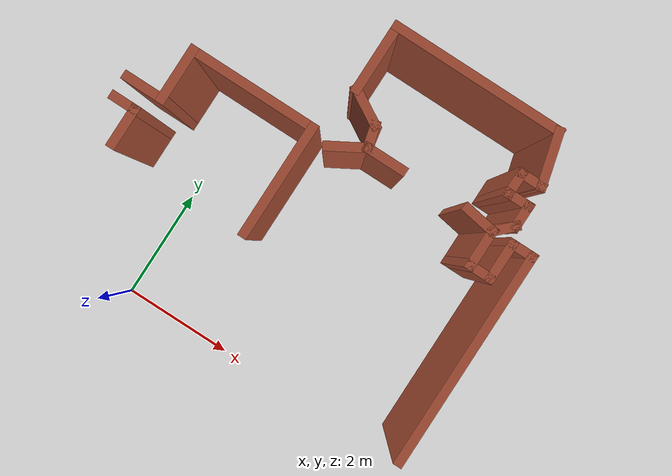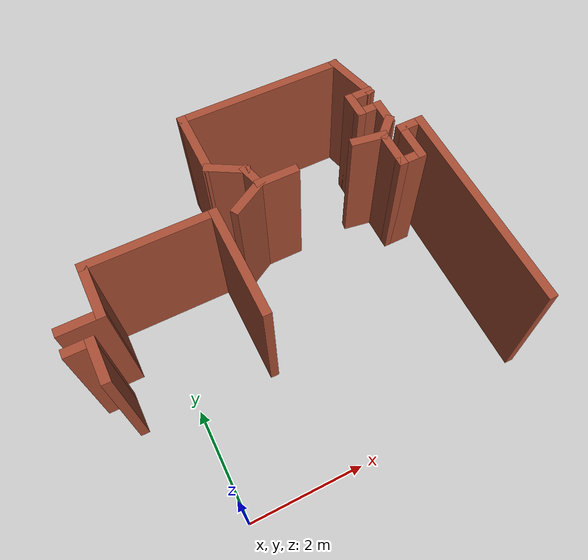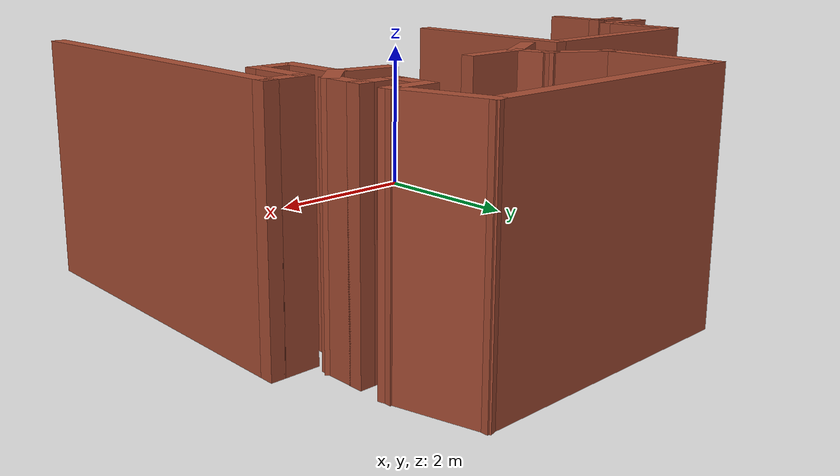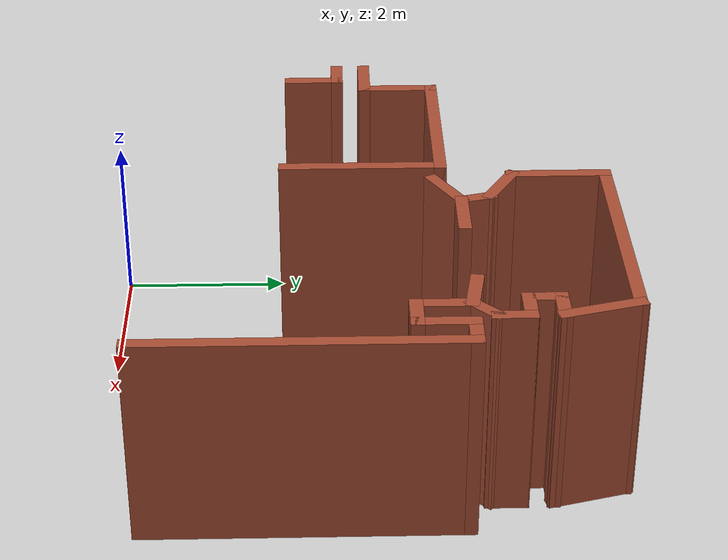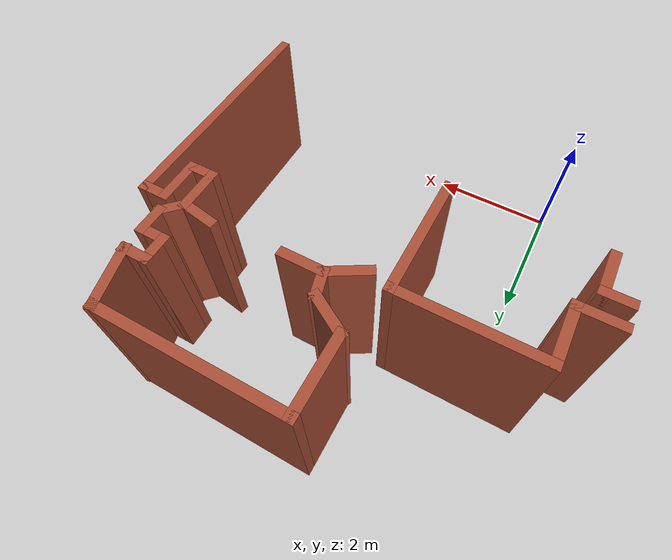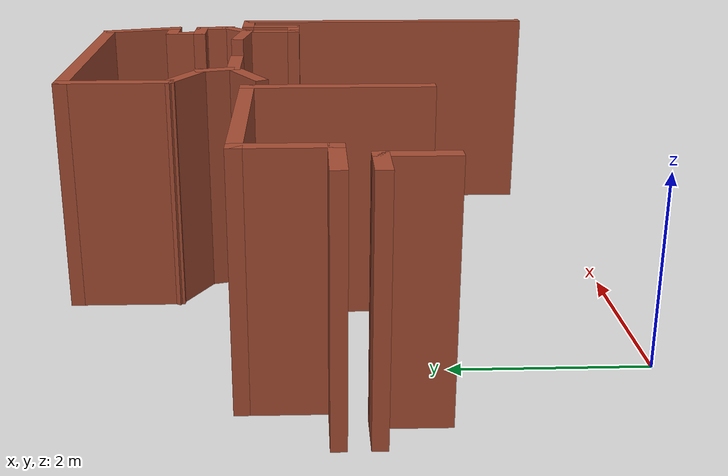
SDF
<sdf version="1.6">
 <model name="map_77">
  <link name="Wall_100">
   <pose>-0.702644 3.51805 0 0 0 -1.5708</pose>
   <visual name="Wall_100_Visual">
    <pose>0 0 1.25 0 -0 0</pose>
    <geometry><box><size>1 0.15 2.5</size></box></geometry>
    <material>
     <script><uri>file://media/materials/scripts/gazebo.material</uri><name>Gazebo/Bricks</name></script>
     <ambient>1 1 1 1</ambient>
     <shader type="pixel"/>
    </material>
    <meta><layer>0</layer></meta>
   </visual>
   <collision name="Wall_100_Collision">
    <pose>0 0 1.25 0 -0 0</pose>
    <geometry><box><size>1 0.15 2.5</size></box></geometry>
    <surface>
     <friction>
      <ode><mu>1</mu><mu2>1</mu2><fdir1>0 0 0</fdir1><slip1>0</slip1><slip2>0</slip2></ode>
      <torsional>
       <coefficient>1</coefficient>
       <patch_radius>0</patch_radius>
       <surface_radius>0</surface_radius>
       <use_patch_radius>1</use_patch_radius>
       <ode><slip>0</slip></ode>
      </torsional>
     </friction>
     <bounce><restitution_coefficient>0</restitution_coefficient><threshold>1e+06</threshold></bounce>
     <contact>
      <collide_without_contact>0</collide_without_contact>
      <collide_without_contact_bitmask>1</collide_without_contact_bitmask>
      <collide_bitmask>1</collide_bitmask>
      <ode>
       <soft_cfm>0</soft_cfm>
       <soft_erp>0.2</soft_erp>
       <kp>1e+13</kp>
       <kd>1</kd>
       <max_vel>0.01</max_vel>
       <min_depth>0</min_depth>
      </ode>
      <bullet>
       <split_impulse>1</split_impulse>
       <split_impulse_penetration_threshold>-0.01</split_impulse_penetration_threshold>
       <soft_cfm>0</soft_cfm>
       <soft_erp>0.2</soft_erp>
       <kp>1e+13</kp>
       <kd>1</kd>
      </bullet>
     </contact>
    </surface>
   </collision>
  </link>
  <link name="Wall_101">
   <pose>-1.00264 3.09305 0 0 -0 3.14159</pose>
   <visual name="Wall_101_Visual">
    <pose>0 0 1.25 0 -0 0</pose>
    <geometry><box><size>0.75 0.15 2.5</size></box></geometry>
    <material>
     <script><uri>file://media/materials/scripts/gazebo.material</uri><name>Gazebo/Bricks</name></script>
     <ambient>1 1 1 1</ambient>
     <shader type="pixel"/>
    </material>
    <meta><layer>0</layer></meta>
   </visual>
   <collision name="Wall_101_Collision">
    <pose>0 0 1.25 0 -0 0</pose>
    <geometry><box><size>0.75 0.15 2.5</size></box></geometry>
    <surface>
     <friction>
      <ode><mu>1</mu><mu2>1</mu2><fdir1>0 0 0</fdir1><slip1>0</slip1><slip2>0</slip2></ode>
      <torsional>
       <coefficient>1</coefficient>
       <patch_radius>0</patch_radius>
       <surface_radius>0</surface_radius>
       <use_patch_radius>1</use_patch_radius>
       <ode><slip>0</slip></ode>
      </torsional>
     </friction>
     <bounce><restitution_coefficient>0</restitution_coefficient><threshold>1e+06</threshold></bounce>
     <contact>
      <collide_without_contact>0</collide_without_contact>
      <collide_without_contact_bitmask>1</collide_without_contact_bitmask>
      <collide_bitmask>1</collide_bitmask>
      <ode>
       <soft_cfm>0</soft_cfm>
       <soft_erp>0.2</soft_erp>
       <kp>1e+13</kp>
       <kd>1</kd>
       <max_vel>0.01</max_vel>
       <min_depth>0</min_depth>
      </ode>
      <bullet>
       <split_impulse>1</split_impulse>
       <split_impulse_penetration_threshold>-0.01</split_impulse_penetration_threshold>
       <soft_cfm>0</soft_cfm>
       <soft_erp>0.2</soft_erp>
       <kp>1e+13</kp>
       <kd>1</kd>
      </bullet>
     </contact>
    </surface>
   </collision>
  </link>
  <link name="Wall_103">
   <pose>-1.12764 2.74305 0 0 -0 0</pose>
   <visual name="Wall_103_Visual">
    <pose>0 0 1.25 0 -0 0</pose>
    <geometry><box><size>0.5 0.15 2.5</size></box></geometry>
    <material>
     <script><uri>file://media/materials/scripts/gazebo.material</uri><name>Gazebo/Bricks</name></script>
     <ambient>1 1 1 1</ambient>
     <shader type="pixel"/>
    </material>
    <meta><layer>0</layer></meta>
   </visual>
   <collision name="Wall_103_Collision">
    <pose>0 0 1.25 0 -0 0</pose>
    <geometry><box><size>0.5 0.15 2.5</size></box></geometry>
    <surface>
     <friction>
      <ode><mu>1</mu><mu2>1</mu2><fdir1>0 0 0</fdir1><slip1>0</slip1><slip2>0</slip2></ode>
      <torsional>
       <coefficient>1</coefficient>
       <patch_radius>0</patch_radius>
       <surface_radius>0</surface_radius>
       <use_patch_radius>1</use_patch_radius>
       <ode><slip>0</slip></ode>
      </torsional>
     </friction>
     <bounce><restitution_coefficient>0</restitution_coefficient><threshold>1e+06</threshold></bounce>
     <contact>
      <collide_without_contact>0</collide_without_contact>
      <collide_without_contact_bitmask>1</collide_without_contact_bitmask>
      <collide_bitmask>1</collide_bitmask>
      <ode>
       <soft_cfm>0</soft_cfm>
       <soft_erp>0.2</soft_erp>
       <kp>1e+13</kp>
       <kd>1</kd>
       <max_vel>0.01</max_vel>
       <min_depth>0</min_depth>
      </ode>
      <bullet>
       <split_impulse>1</split_impulse>
       <split_impulse_penetration_threshold>-0.01</split_impulse_penetration_threshold>
       <soft_cfm>0</soft_cfm>
       <soft_erp>0.2</soft_erp>
       <kp>1e+13</kp>
       <kd>1</kd>
      </bullet>
     </contact>
    </surface>
   </collision>
  </link>
  <link name="Wall_104">
   <pose>-0.952644 2.44305 0 0 0 -1.5708</pose>
   <visual name="Wall_104_Visual">
    <pose>0 0 1.25 0 -0 0</pose>
    <geometry><box><size>0.75 0.15 2.5</size></box></geometry>
    <material>
     <script><uri>file://media/materials/scripts/gazebo.material</uri><name>Gazebo/Bricks</name></script>
     <ambient>1 1 1 1</ambient>
     <shader type="pixel"/>
    </material>
    <meta><layer>0</layer></meta>
   </visual>
   <collision name="Wall_104_Collision">
    <pose>0 0 1.25 0 -0 0</pose>
    <geometry><box><size>0.75 0.15 2.5</size></box></geometry>
    <surface>
     <friction>
      <ode><mu>1</mu><mu2>1</mu2><fdir1>0 0 0</fdir1><slip1>0</slip1><slip2>0</slip2></ode>
      <torsional>
       <coefficient>1</coefficient>
       <patch_radius>0</patch_radius>
       <surface_radius>0</surface_radius>
       <use_patch_radius>1</use_patch_radius>
       <ode><slip>0</slip></ode>
      </torsional>
     </friction>
     <bounce><restitution_coefficient>0</restitution_coefficient><threshold>1e+06</threshold></bounce>
     <contact>
      <collide_without_contact>0</collide_without_contact>
      <collide_without_contact_bitmask>1</collide_without_contact_bitmask>
      <collide_bitmask>1</collide_bitmask>
      <ode>
       <soft_cfm>0</soft_cfm>
       <soft_erp>0.2</soft_erp>
       <kp>1e+13</kp>
       <kd>1</kd>
       <max_vel>0.01</max_vel>
       <min_depth>0</min_depth>
      </ode>
      <bullet>
       <split_impulse>1</split_impulse>
       <split_impulse_penetration_threshold>-0.01</split_impulse_penetration_threshold>
       <soft_cfm>0</soft_cfm>
       <soft_erp>0.2</soft_erp>
       <kp>1e+13</kp>
       <kd>1</kd>
      </bullet>
     </contact>
    </surface>
   </collision>
  </link>
  <link name="Wall_126">
   <pose>2.54653 4.13776 0 0 -0 0</pose>
   <visual name="Wall_126_Visual">
    <pose>0 0 1.25 0 -0 0</pose>
    <geometry><box><size>0.75 0.15 2.5</size></box></geometry>
    <material>
     <script><uri>file://media/materials/scripts/gazebo.material</uri><name>Gazebo/Bricks</name></script>
     <ambient>1 1 1 1</ambient>
     <shader type="pixel"/>
    </material>
    <meta><layer>0</layer></meta>
   </visual>
   <collision name="Wall_126_Collision">
    <pose>0 0 1.25 0 -0 0</pose>
    <geometry><box><size>0.75 0.15 2.5</size></box></geometry>
    <surface>
     <friction>
      <ode><mu>1</mu><mu2>1</mu2><fdir1>0 0 0</fdir1><slip1>0</slip1><slip2>0</slip2></ode>
      <torsional>
       <coefficient>1</coefficient>
       <patch_radius>0</patch_radius>
       <surface_radius>0</surface_radius>
       <use_patch_radius>1</use_patch_radius>
       <ode><slip>0</slip></ode>
      </torsional>
     </friction>
     <bounce><restitution_coefficient>0</restitution_coefficient><threshold>1e+06</threshold></bounce>
     <contact>
      <collide_without_contact>0</collide_without_contact>
      <collide_without_contact_bitmask>1</collide_without_contact_bitmask>
      <collide_bitmask>1</collide_bitmask>
      <ode>
       <soft_cfm>0</soft_cfm>
       <soft_erp>0.2</soft_erp>
       <kp>1e+13</kp>
       <kd>1</kd>
       <max_vel>0.01</max_vel>
       <min_depth>0</min_depth>
      </ode>
      <bullet>
       <split_impulse>1</split_impulse>
       <split_impulse_penetration_threshold>-0.01</split_impulse_penetration_threshold>
       <soft_cfm>0</soft_cfm>
       <soft_erp>0.2</soft_erp>
       <kp>1e+13</kp>
       <kd>1</kd>
      </bullet>
     </contact>
    </surface>
   </collision>
  </link>
  <link name="Wall_128">
   <pose>4.21616 4.14715 0 0 0 -0.162711</pose>
   <visual name="Wall_128_Visual">
    <pose>0 0 1.25 0 -0 0</pose>
    <geometry><box><size>0.641843 0.15 2.5</size></box></geometry>
    <material>
     <script><uri>file://media/materials/scripts/gazebo.material</uri><name>Gazebo/Bricks</name></script>
     <ambient>1 1 1 1</ambient>
     <shader type="pixel"/>
    </material>
    <meta><layer>0</layer></meta>
   </visual>
   <collision name="Wall_128_Collision">
    <pose>0 0 1.25 0 -0 0</pose>
    <geometry><box><size>0.641843 0.15 2.5</size></box></geometry>
    <surface>
     <friction>
      <ode><mu>1</mu><mu2>1</mu2><fdir1>0 0 0</fdir1><slip1>0</slip1><slip2>0</slip2></ode>
      <torsional>
       <coefficient>1</coefficient>
       <patch_radius>0</patch_radius>
       <surface_radius>0</surface_radius>
       <use_patch_radius>1</use_patch_radius>
       <ode><slip>0</slip></ode>
      </torsional>
     </friction>
     <bounce><restitution_coefficient>0</restitution_coefficient><threshold>1e+06</threshold></bounce>
     <contact>
      <collide_without_contact>0</collide_without_contact>
      <collide_without_contact_bitmask>1</collide_without_contact_bitmask>
      <collide_bitmask>1</collide_bitmask>
      <ode>
       <soft_cfm>0</soft_cfm>
       <soft_erp>0.2</soft_erp>
       <kp>1e+13</kp>
       <kd>1</kd>
       <max_vel>0.01</max_vel>
       <min_depth>0</min_depth>
      </ode>
      <bullet>
       <split_impulse>1</split_impulse>
       <split_impulse_penetration_threshold>-0.01</split_impulse_penetration_threshold>
       <soft_cfm>0</soft_cfm>
       <soft_erp>0.2</soft_erp>
       <kp>1e+13</kp>
       <kd>1</kd>
      </bullet>
     </contact>
    </surface>
   </collision>
  </link>
  <link name="Wall_74">
   <pose>5.15883 2.30731 0 0 -0 1.5708</pose>
   <visual name="Wall_74_Visual">
    <pose>0 0 1.25 0 -0 0</pose>
    <geometry><box><size>3.75 0.15 2.5</size></box></geometry>
    <material>
     <script><uri>file://media/materials/scripts/gazebo.material</uri><name>Gazebo/Bricks</name></script>
     <ambient>1 1 1 1</ambient>
     <shader type="pixel"/>
    </material>
    <meta><layer>0</layer></meta>
   </visual>
   <collision name="Wall_74_Collision">
    <pose>0 0 1.25 0 -0 0</pose>
    <geometry><box><size>3.75 0.15 2.5</size></box></geometry>
    <surface>
     <friction>
      <ode><mu>1</mu><mu2>1</mu2><fdir1>0 0 0</fdir1><slip1>0</slip1><slip2>0</slip2></ode>
      <torsional>
       <coefficient>1</coefficient>
       <patch_radius>0</patch_radius>
       <surface_radius>0</surface_radius>
       <use_patch_radius>1</use_patch_radius>
       <ode><slip>0</slip></ode>
      </torsional>
     </friction>
     <bounce><restitution_coefficient>0</restitution_coefficient><threshold>1e+06</threshold></bounce>
     <contact>
      <collide_without_contact>0</collide_without_contact>
      <collide_without_contact_bitmask>1</collide_without_contact_bitmask>
      <collide_bitmask>1</collide_bitmask>
      <ode>
       <soft_cfm>0</soft_cfm>
       <soft_erp>0.2</soft_erp>
       <kp>1e+13</kp>
       <kd>1</kd>
       <max_vel>0.01</max_vel>
       <min_depth>0</min_depth>
      </ode>
      <bullet>
       <split_impulse>1</split_impulse>
       <split_impulse_penetration_threshold>-0.01</split_impulse_penetration_threshold>
       <soft_cfm>0</soft_cfm>
       <soft_erp>0.2</soft_erp>
       <kp>1e+13</kp>
       <kd>1</kd>
      </bullet>
     </contact>
    </surface>
   </collision>
  </link>
  <link name="Wall_75">
   <pose>4.98383 4.10731 0 0 -0 3.14159</pose>
   <visual name="Wall_75_Visual">
    <pose>0 0 1.25 0 -0 0</pose>
    <geometry><box><size>0.5 0.15 2.5</size></box></geometry>
    <material>
     <script><uri>file://media/materials/scripts/gazebo.material</uri><name>Gazebo/Bricks</name></script>
     <ambient>1 1 1 1</ambient>
     <shader type="pixel"/>
    </material>
    <meta><layer>0</layer></meta>
   </visual>
   <collision name="Wall_75_Collision">
    <pose>0 0 1.25 0 -0 0</pose>
    <geometry><box><size>0.5 0.15 2.5</size></box></geometry>
    <surface>
     <friction>
      <ode><mu>1</mu><mu2>1</mu2><fdir1>0 0 0</fdir1><slip1>0</slip1><slip2>0</slip2></ode>
      <torsional>
       <coefficient>1</coefficient>
       <patch_radius>0</patch_radius>
       <surface_radius>0</surface_radius>
       <use_patch_radius>1</use_patch_radius>
       <ode><slip>0</slip></ode>
      </torsional>
     </friction>
     <bounce><restitution_coefficient>0</restitution_coefficient><threshold>1e+06</threshold></bounce>
     <contact>
      <collide_without_contact>0</collide_without_contact>
      <collide_without_contact_bitmask>1</collide_without_contact_bitmask>
      <collide_bitmask>1</collide_bitmask>
      <ode>
       <soft_cfm>0</soft_cfm>
       <soft_erp>0.2</soft_erp>
       <kp>1e+13</kp>
       <kd>1</kd>
       <max_vel>0.01</max_vel>
       <min_depth>0</min_depth>
      </ode>
      <bullet>
       <split_impulse>1</split_impulse>
       <split_impulse_penetration_threshold>-0.01</split_impulse_penetration_threshold>
       <soft_cfm>0</soft_cfm>
       <soft_erp>0.2</soft_erp>
       <kp>1e+13</kp>
       <kd>1</kd>
      </bullet>
     </contact>
    </surface>
   </collision>
  </link>
  <link name="Wall_76">
   <pose>4.80883 3.80731 0 0 0 -1.5708</pose>
   <visual name="Wall_76_Visual">
    <pose>0 0 1.25 0 -0 0</pose>
    <geometry><box><size>0.75 0.15 2.5</size></box></geometry>
    <material>
     <script><uri>file://media/materials/scripts/gazebo.material</uri><name>Gazebo/Bricks</name></script>
     <ambient>1 1 1 1</ambient>
     <shader type="pixel"/>
    </material>
    <meta><layer>0</layer></meta>
   </visual>
   <collision name="Wall_76_Collision">
    <pose>0 0 1.25 0 -0 0</pose>
    <geometry><box><size>0.75 0.15 2.5</size></box></geometry>
    <surface>
     <friction>
      <ode><mu>1</mu><mu2>1</mu2><fdir1>0 0 0</fdir1><slip1>0</slip1><slip2>0</slip2></ode>
      <torsional>
       <coefficient>1</coefficient>
       <patch_radius>0</patch_radius>
       <surface_radius>0</surface_radius>
       <use_patch_radius>1</use_patch_radius>
       <ode><slip>0</slip></ode>
      </torsional>
     </friction>
     <bounce><restitution_coefficient>0</restitution_coefficient><threshold>1e+06</threshold></bounce>
     <contact>
      <collide_without_contact>0</collide_without_contact>
      <collide_without_contact_bitmask>1</collide_without_contact_bitmask>
      <collide_bitmask>1</collide_bitmask>
      <ode>
       <soft_cfm>0</soft_cfm>
       <soft_erp>0.2</soft_erp>
       <kp>1e+13</kp>
       <kd>1</kd>
       <max_vel>0.01</max_vel>
       <min_depth>0</min_depth>
      </ode>
      <bullet>
       <split_impulse>1</split_impulse>
       <split_impulse_penetration_threshold>-0.01</split_impulse_penetration_threshold>
       <soft_cfm>0</soft_cfm>
       <soft_erp>0.2</soft_erp>
       <kp>1e+13</kp>
       <kd>1</kd>
      </bullet>
     </contact>
    </surface>
   </collision>
  </link>
  <link name="Wall_77">
   <pose>4.63383 3.50731 0 0 -0 3.14159</pose>
   <visual name="Wall_77_Visual">
    <pose>0 0 1.25 0 -0 0</pose>
    <geometry><box><size>0.5 0.15 2.5</size></box></geometry>
    <material>
     <script><uri>file://media/materials/scripts/gazebo.material</uri><name>Gazebo/Bricks</name></script>
     <ambient>1 1 1 1</ambient>
     <shader type="pixel"/>
    </material>
    <meta><layer>0</layer></meta>
   </visual>
   <collision name="Wall_77_Collision">
    <pose>0 0 1.25 0 -0 0</pose>
    <geometry><box><size>0.5 0.15 2.5</size></box></geometry>
    <surface>
     <friction>
      <ode><mu>1</mu><mu2>1</mu2><fdir1>0 0 0</fdir1><slip1>0</slip1><slip2>0</slip2></ode>
      <torsional>
       <coefficient>1</coefficient>
       <patch_radius>0</patch_radius>
       <surface_radius>0</surface_radius>
       <use_patch_radius>1</use_patch_radius>
       <ode><slip>0</slip></ode>
      </torsional>
     </friction>
     <bounce><restitution_coefficient>0</restitution_coefficient><threshold>1e+06</threshold></bounce>
     <contact>
      <collide_without_contact>0</collide_without_contact>
      <collide_without_contact_bitmask>1</collide_without_contact_bitmask>
      <collide_bitmask>1</collide_bitmask>
      <ode>
       <soft_cfm>0</soft_cfm>
       <soft_erp>0.2</soft_erp>
       <kp>1e+13</kp>
       <kd>1</kd>
       <max_vel>0.01</max_vel>
       <min_depth>0</min_depth>
      </ode>
      <bullet>
       <split_impulse>1</split_impulse>
       <split_impulse_penetration_threshold>-0.01</split_impulse_penetration_threshold>
       <soft_cfm>0</soft_cfm>
       <soft_erp>0.2</soft_erp>
       <kp>1e+13</kp>
       <kd>1</kd>
      </bullet>
     </contact>
    </surface>
   </collision>
  </link>
  <link name="Wall_78">
   <pose>4.45883 3.80731 0 0 -0 1.5708</pose>
   <visual name="Wall_78_Visual">
    <pose>0 0 1.25 0 -0 0</pose>
    <geometry><box><size>0.75 0.15 2.5</size></box></geometry>
    <material>
     <script><uri>file://media/materials/scripts/gazebo.material</uri><name>Gazebo/Bricks</name></script>
     <ambient>1 1 1 1</ambient>
     <shader type="pixel"/>
    </material>
    <meta><layer>0</layer></meta>
   </visual>
   <collision name="Wall_78_Collision">
    <pose>0 0 1.25 0 -0 0</pose>
    <geometry><box><size>0.75 0.15 2.5</size></box></geometry>
    <surface>
     <friction>
      <ode><mu>1</mu><mu2>1</mu2><fdir1>0 0 0</fdir1><slip1>0</slip1><slip2>0</slip2></ode>
      <torsional>
       <coefficient>1</coefficient>
       <patch_radius>0</patch_radius>
       <surface_radius>0</surface_radius>
       <use_patch_radius>1</use_patch_radius>
       <ode><slip>0</slip></ode>
      </torsional>
     </friction>
     <bounce><restitution_coefficient>0</restitution_coefficient><threshold>1e+06</threshold></bounce>
     <contact>
      <collide_without_contact>0</collide_without_contact>
      <collide_without_contact_bitmask>1</collide_without_contact_bitmask>
      <collide_bitmask>1</collide_bitmask>
      <ode>
       <soft_cfm>0</soft_cfm>
       <soft_erp>0.2</soft_erp>
       <kp>1e+13</kp>
       <kd>1</kd>
       <max_vel>0.01</max_vel>
       <min_depth>0</min_depth>
      </ode>
      <bullet>
       <split_impulse>1</split_impulse>
       <split_impulse_penetration_threshold>-0.01</split_impulse_penetration_threshold>
       <soft_cfm>0</soft_cfm>
       <soft_erp>0.2</soft_erp>
       <kp>1e+13</kp>
       <kd>1</kd>
      </bullet>
     </contact>
    </surface>
   </collision>
  </link>
  <link name="Wall_79">
   <pose>4.58258 4.23105 0 0 -0 0.785398</pose>
   <visual name="Wall_79_Visual">
    <pose>0 0 1.25 0 -0 0</pose>
    <geometry><box><size>0.5 0.15 2.5</size></box></geometry>
    <material>
     <script><uri>file://media/materials/scripts/gazebo.material</uri><name>Gazebo/Bricks</name></script>
     <ambient>1 1 1 1</ambient>
     <shader type="pixel"/>
    </material>
    <meta><layer>0</layer></meta>
   </visual>
   <collision name="Wall_79_Collision">
    <pose>0 0 1.25 0 -0 0</pose>
    <geometry><box><size>0.5 0.15 2.5</size></box></geometry>
    <surface>
     <friction>
      <ode><mu>1</mu><mu2>1</mu2><fdir1>0 0 0</fdir1><slip1>0</slip1><slip2>0</slip2></ode>
      <torsional>
       <coefficient>1</coefficient>
       <patch_radius>0</patch_radius>
       <surface_radius>0</surface_radius>
       <use_patch_radius>1</use_patch_radius>
       <ode><slip>0</slip></ode>
      </torsional>
     </friction>
     <bounce><restitution_coefficient>0</restitution_coefficient><threshold>1e+06</threshold></bounce>
     <contact>
      <collide_without_contact>0</collide_without_contact>
      <collide_without_contact_bitmask>1</collide_without_contact_bitmask>
      <collide_bitmask>1</collide_bitmask>
      <ode>
       <soft_cfm>0</soft_cfm>
       <soft_erp>0.2</soft_erp>
       <kp>1e+13</kp>
       <kd>1</kd>
       <max_vel>0.01</max_vel>
       <min_depth>0</min_depth>
      </ode>
      <bullet>
       <split_impulse>1</split_impulse>
       <split_impulse_penetration_threshold>-0.01</split_impulse_penetration_threshold>
       <soft_cfm>0</soft_cfm>
       <soft_erp>0.2</soft_erp>
       <kp>1e+13</kp>
       <kd>1</kd>
      </bullet>
     </contact>
    </surface>
   </collision>
  </link>
  <link name="Wall_80">
   <pose>4.70632 4.5298 0 0 -0 1.5708</pose>
   <visual name="Wall_80_Visual">
    <pose>0 0 1.25 0 -0 0</pose>
    <geometry><box><size>0.5 0.15 2.5</size></box></geometry>
    <material>
     <script><uri>file://media/materials/scripts/gazebo.material</uri><name>Gazebo/Bricks</name></script>
     <ambient>1 1 1 1</ambient>
     <shader type="pixel"/>
    </material>
    <meta><layer>0</layer></meta>
   </visual>
   <collision name="Wall_80_Collision">
    <pose>0 0 1.25 0 -0 0</pose>
    <geometry><box><size>0.5 0.15 2.5</size></box></geometry>
    <surface>
     <friction>
      <ode><mu>1</mu><mu2>1</mu2><fdir1>0 0 0</fdir1><slip1>0</slip1><slip2>0</slip2></ode>
      <torsional>
       <coefficient>1</coefficient>
       <patch_radius>0</patch_radius>
       <surface_radius>0</surface_radius>
       <use_patch_radius>1</use_patch_radius>
       <ode><slip>0</slip></ode>
      </torsional>
     </friction>
     <bounce><restitution_coefficient>0</restitution_coefficient><threshold>1e+06</threshold></bounce>
     <contact>
      <collide_without_contact>0</collide_without_contact>
      <collide_without_contact_bitmask>1</collide_without_contact_bitmask>
      <collide_bitmask>1</collide_bitmask>
      <ode>
       <soft_cfm>0</soft_cfm>
       <soft_erp>0.2</soft_erp>
       <kp>1e+13</kp>
       <kd>1</kd>
       <max_vel>0.01</max_vel>
       <min_depth>0</min_depth>
      </ode>
      <bullet>
       <split_impulse>1</split_impulse>
       <split_impulse_penetration_threshold>-0.01</split_impulse_penetration_threshold>
       <soft_cfm>0</soft_cfm>
       <soft_erp>0.2</soft_erp>
       <kp>1e+13</kp>
       <kd>1</kd>
      </bullet>
     </contact>
    </surface>
   </collision>
  </link>
  <link name="Wall_81">
   <pose>4.53132 4.7048 0 0 -0 3.14159</pose>
   <visual name="Wall_81_Visual">
    <pose>0 0 1.25 0 -0 0</pose>
    <geometry><box><size>0.5 0.15 2.5</size></box></geometry>
    <material>
     <script><uri>file://media/materials/scripts/gazebo.material</uri><name>Gazebo/Bricks</name></script>
     <ambient>1 1 1 1</ambient>
     <shader type="pixel"/>
    </material>
    <meta><layer>0</layer></meta>
   </visual>
   <collision name="Wall_81_Collision">
    <pose>0 0 1.25 0 -0 0</pose>
    <geometry><box><size>0.5 0.15 2.5</size></box></geometry>
    <surface>
     <friction>
      <ode><mu>1</mu><mu2>1</mu2><fdir1>0 0 0</fdir1><slip1>0</slip1><slip2>0</slip2></ode>
      <torsional>
       <coefficient>1</coefficient>
       <patch_radius>0</patch_radius>
       <surface_radius>0</surface_radius>
       <use_patch_radius>1</use_patch_radius>
       <ode><slip>0</slip></ode>
      </torsional>
     </friction>
     <bounce><restitution_coefficient>0</restitution_coefficient><threshold>1e+06</threshold></bounce>
     <contact>
      <collide_without_contact>0</collide_without_contact>
      <collide_without_contact_bitmask>1</collide_without_contact_bitmask>
      <collide_bitmask>1</collide_bitmask>
      <ode>
       <soft_cfm>0</soft_cfm>
       <soft_erp>0.2</soft_erp>
       <kp>1e+13</kp>
       <kd>1</kd>
       <max_vel>0.01</max_vel>
       <min_depth>0</min_depth>
      </ode>
      <bullet>
       <split_impulse>1</split_impulse>
       <split_impulse_penetration_threshold>-0.01</split_impulse_penetration_threshold>
       <soft_cfm>0</soft_cfm>
       <soft_erp>0.2</soft_erp>
       <kp>1e+13</kp>
       <kd>1</kd>
      </bullet>
     </contact>
    </surface>
   </collision>
  </link>
  <link name="Wall_82">
   <pose>4.35632 4.8798 0 0 -0 1.5708</pose>
   <visual name="Wall_82_Visual">
    <pose>0 0 1.25 0 -0 0</pose>
    <geometry><box><size>0.5 0.15 2.5</size></box></geometry>
    <material>
     <script><uri>file://media/materials/scripts/gazebo.material</uri><name>Gazebo/Bricks</name></script>
     <ambient>1 1 1 1</ambient>
     <shader type="pixel"/>
    </material>
    <meta><layer>0</layer></meta>
   </visual>
   <collision name="Wall_82_Collision">
    <pose>0 0 1.25 0 -0 0</pose>
    <geometry><box><size>0.5 0.15 2.5</size></box></geometry>
    <surface>
     <friction>
      <ode><mu>1</mu><mu2>1</mu2><fdir1>0 0 0</fdir1><slip1>0</slip1><slip2>0</slip2></ode>
      <torsional>
       <coefficient>1</coefficient>
       <patch_radius>0</patch_radius>
       <surface_radius>0</surface_radius>
       <use_patch_radius>1</use_patch_radius>
       <ode><slip>0</slip></ode>
      </torsional>
     </friction>
     <bounce><restitution_coefficient>0</restitution_coefficient><threshold>1e+06</threshold></bounce>
     <contact>
      <collide_without_contact>0</collide_without_contact>
      <collide_without_contact_bitmask>1</collide_without_contact_bitmask>
      <collide_bitmask>1</collide_bitmask>
      <ode>
       <soft_cfm>0</soft_cfm>
       <soft_erp>0.2</soft_erp>
       <kp>1e+13</kp>
       <kd>1</kd>
       <max_vel>0.01</max_vel>
       <min_depth>0</min_depth>
      </ode>
      <bullet>
       <split_impulse>1</split_impulse>
       <split_impulse_penetration_threshold>-0.01</split_impulse_penetration_threshold>
       <soft_cfm>0</soft_cfm>
       <soft_erp>0.2</soft_erp>
       <kp>1e+13</kp>
       <kd>1</kd>
      </bullet>
     </contact>
    </surface>
   </collision>
  </link>
  <link name="Wall_83">
   <pose>4.53132 5.0548 0 0 -0 0</pose>
   <visual name="Wall_83_Visual">
    <pose>0 0 1.25 0 -0 0</pose>
    <geometry><box><size>0.5 0.15 2.5</size></box></geometry>
    <material>
     <script><uri>file://media/materials/scripts/gazebo.material</uri><name>Gazebo/Bricks</name></script>
     <ambient>1 1 1 1</ambient>
     <shader type="pixel"/>
    </material>
    <meta><layer>0</layer></meta>
   </visual>
   <collision name="Wall_83_Collision">
    <pose>0 0 1.25 0 -0 0</pose>
    <geometry><box><size>0.5 0.15 2.5</size></box></geometry>
    <surface>
     <friction>
      <ode><mu>1</mu><mu2>1</mu2><fdir1>0 0 0</fdir1><slip1>0</slip1><slip2>0</slip2></ode>
      <torsional>
       <coefficient>1</coefficient>
       <patch_radius>0</patch_radius>
       <surface_radius>0</surface_radius>
       <use_patch_radius>1</use_patch_radius>
       <ode><slip>0</slip></ode>
      </torsional>
     </friction>
     <bounce><restitution_coefficient>0</restitution_coefficient><threshold>1e+06</threshold></bounce>
     <contact>
      <collide_without_contact>0</collide_without_contact>
      <collide_without_contact_bitmask>1</collide_without_contact_bitmask>
      <collide_bitmask>1</collide_bitmask>
      <ode>
       <soft_cfm>0</soft_cfm>
       <soft_erp>0.2</soft_erp>
       <kp>1e+13</kp>
       <kd>1</kd>
       <max_vel>0.01</max_vel>
       <min_depth>0</min_depth>
      </ode>
      <bullet>
       <split_impulse>1</split_impulse>
       <split_impulse_penetration_threshold>-0.01</split_impulse_penetration_threshold>
       <soft_cfm>0</soft_cfm>
       <soft_erp>0.2</soft_erp>
       <kp>1e+13</kp>
       <kd>1</kd>
      </bullet>
     </contact>
    </surface>
   </collision>
  </link>
  <link name="Wall_86">
   <pose>4.59632 5.46532 0 0 -0 1.8326</pose>
   <visual name="Wall_86_Visual">
    <pose>0 0 1.25 0 -0 0</pose>
    <geometry><box><size>1 0.15 2.5</size></box></geometry>
    <material>
     <script><uri>file://media/materials/scripts/gazebo.material</uri><name>Gazebo/Bricks</name></script>
     <ambient>1 1 1 1</ambient>
     <shader type="pixel"/>
    </material>
    <meta><layer>0</layer></meta>
   </visual>
   <collision name="Wall_86_Collision">
    <pose>0 0 1.25 0 -0 0</pose>
    <geometry><box><size>1 0.15 2.5</size></box></geometry>
    <surface>
     <friction>
      <ode><mu>1</mu><mu2>1</mu2><fdir1>0 0 0</fdir1><slip1>0</slip1><slip2>0</slip2></ode>
      <torsional>
       <coefficient>1</coefficient>
       <patch_radius>0</patch_radius>
       <surface_radius>0</surface_radius>
       <use_patch_radius>1</use_patch_radius>
       <ode><slip>0</slip></ode>
      </torsional>
     </friction>
     <bounce><restitution_coefficient>0</restitution_coefficient><threshold>1e+06</threshold></bounce>
     <contact>
      <collide_without_contact>0</collide_without_contact>
      <collide_without_contact_bitmask>1</collide_without_contact_bitmask>
      <collide_bitmask>1</collide_bitmask>
      <ode>
       <soft_cfm>0</soft_cfm>
       <soft_erp>0.2</soft_erp>
       <kp>1e+13</kp>
       <kd>1</kd>
       <max_vel>0.01</max_vel>
       <min_depth>0</min_depth>
      </ode>
      <bullet>
       <split_impulse>1</split_impulse>
       <split_impulse_penetration_threshold>-0.01</split_impulse_penetration_threshold>
       <soft_cfm>0</soft_cfm>
       <soft_erp>0.2</soft_erp>
       <kp>1e+13</kp>
       <kd>1</kd>
      </bullet>
     </contact>
    </surface>
   </collision>
  </link>
  <link name="Wall_87">
   <pose>3.06133 5.87583 0 0 -0 3.14159</pose>
   <visual name="Wall_87_Visual">
    <pose>0 0 1.25 0 -0 0</pose>
    <geometry><box><size>3 0.15 2.5</size></box></geometry>
    <material>
     <script><uri>file://media/materials/scripts/gazebo.material</uri><name>Gazebo/Bricks</name></script>
     <ambient>1 1 1 1</ambient>
     <shader type="pixel"/>
    </material>
    <meta><layer>0</layer></meta>
   </visual>
   <collision name="Wall_87_Collision">
    <pose>0 0 1.25 0 -0 0</pose>
    <geometry><box><size>3 0.15 2.5</size></box></geometry>
    <surface>
     <friction>
      <ode><mu>1</mu><mu2>1</mu2><fdir1>0 0 0</fdir1><slip1>0</slip1><slip2>0</slip2></ode>
      <torsional>
       <coefficient>1</coefficient>
       <patch_radius>0</patch_radius>
       <surface_radius>0</surface_radius>
       <use_patch_radius>1</use_patch_radius>
       <ode><slip>0</slip></ode>
      </torsional>
     </friction>
     <bounce><restitution_coefficient>0</restitution_coefficient><threshold>1e+06</threshold></bounce>
     <contact>
      <collide_without_contact>0</collide_without_contact>
      <collide_without_contact_bitmask>1</collide_without_contact_bitmask>
      <collide_bitmask>1</collide_bitmask>
      <ode>
       <soft_cfm>0</soft_cfm>
       <soft_erp>0.2</soft_erp>
       <kp>1e+13</kp>
       <kd>1</kd>
       <max_vel>0.01</max_vel>
       <min_depth>0</min_depth>
      </ode>
      <bullet>
       <split_impulse>1</split_impulse>
       <split_impulse_penetration_threshold>-0.01</split_impulse_penetration_threshold>
       <soft_cfm>0</soft_cfm>
       <soft_erp>0.2</soft_erp>
       <kp>1e+13</kp>
       <kd>1</kd>
      </bullet>
     </contact>
    </surface>
   </collision>
  </link>
  <link name="Wall_88">
   <pose>1.63633 5.32583 0 0 0 -1.5708</pose>
   <visual name="Wall_88_Visual">
    <pose>0 0 1.25 0 -0 0</pose>
    <geometry><box><size>1.25 0.15 2.5</size></box></geometry>
    <material>
     <script><uri>file://media/materials/scripts/gazebo.material</uri><name>Gazebo/Bricks</name></script>
     <ambient>1 1 1 1</ambient>
     <shader type="pixel"/>
    </material>
    <meta><layer>0</layer></meta>
   </visual>
   <collision name="Wall_88_Collision">
    <pose>0 0 1.25 0 -0 0</pose>
    <geometry><box><size>1.25 0.15 2.5</size></box></geometry>
    <surface>
     <friction>
      <ode><mu>1</mu><mu2>1</mu2><fdir1>0 0 0</fdir1><slip1>0</slip1><slip2>0</slip2></ode>
      <torsional>
       <coefficient>1</coefficient>
       <patch_radius>0</patch_radius>
       <surface_radius>0</surface_radius>
       <use_patch_radius>1</use_patch_radius>
       <ode><slip>0</slip></ode>
      </torsional>
     </friction>
     <bounce><restitution_coefficient>0</restitution_coefficient><threshold>1e+06</threshold></bounce>
     <contact>
      <collide_without_contact>0</collide_without_contact>
      <collide_without_contact_bitmask>1</collide_without_contact_bitmask>
      <collide_bitmask>1</collide_bitmask>
      <ode>
       <soft_cfm>0</soft_cfm>
       <soft_erp>0.2</soft_erp>
       <kp>1e+13</kp>
       <kd>1</kd>
       <max_vel>0.01</max_vel>
       <min_depth>0</min_depth>
      </ode>
      <bullet>
       <split_impulse>1</split_impulse>
       <split_impulse_penetration_threshold>-0.01</split_impulse_penetration_threshold>
       <soft_cfm>0</soft_cfm>
       <soft_erp>0.2</soft_erp>
       <kp>1e+13</kp>
       <kd>1</kd>
      </bullet>
     </contact>
    </surface>
   </collision>
  </link>
  <link name="Wall_89">
   <pose>1.89613 4.62583 0 0 0 -0.523599</pose>
   <visual name="Wall_89_Visual">
    <pose>0 0 1.25 0 -0 0</pose>
    <geometry><box><size>0.75 0.15 2.5</size></box></geometry>
    <material>
     <script><uri>file://media/materials/scripts/gazebo.material</uri><name>Gazebo/Bricks</name></script>
     <ambient>1 1 1 1</ambient>
     <shader type="pixel"/>
    </material>
    <meta><layer>0</layer></meta>
   </visual>
   <collision name="Wall_89_Collision">
    <pose>0 0 1.25 0 -0 0</pose>
    <geometry><box><size>0.75 0.15 2.5</size></box></geometry>
    <surface>
     <friction>
      <ode><mu>1</mu><mu2>1</mu2><fdir1>0 0 0</fdir1><slip1>0</slip1><slip2>0</slip2></ode>
      <torsional>
       <coefficient>1</coefficient>
       <patch_radius>0</patch_radius>
       <surface_radius>0</surface_radius>
       <use_patch_radius>1</use_patch_radius>
       <ode><slip>0</slip></ode>
      </torsional>
     </friction>
     <bounce><restitution_coefficient>0</restitution_coefficient><threshold>1e+06</threshold></bounce>
     <contact>
      <collide_without_contact>0</collide_without_contact>
      <collide_without_contact_bitmask>1</collide_without_contact_bitmask>
      <collide_bitmask>1</collide_bitmask>
      <ode>
       <soft_cfm>0</soft_cfm>
       <soft_erp>0.2</soft_erp>
       <kp>1e+13</kp>
       <kd>1</kd>
       <max_vel>0.01</max_vel>
       <min_depth>0</min_depth>
      </ode>
      <bullet>
       <split_impulse>1</split_impulse>
       <split_impulse_penetration_threshold>-0.01</split_impulse_penetration_threshold>
       <soft_cfm>0</soft_cfm>
       <soft_erp>0.2</soft_erp>
       <kp>1e+13</kp>
       <kd>1</kd>
      </bullet>
     </contact>
    </surface>
   </collision>
  </link>
  <link name="Wall_90">
   <pose>2.20123 4.3068 0 0 0 -1.309</pose>
   <visual name="Wall_90_Visual">
    <pose>0 0 1.25 0 -0 0</pose>
    <geometry><box><size>0.5 0.15 2.5</size></box></geometry>
    <material>
     <script><uri>file://media/materials/scripts/gazebo.material</uri><name>Gazebo/Bricks</name></script>
     <ambient>1 1 1 1</ambient>
     <shader type="pixel"/>
    </material>
    <meta><layer>0</layer></meta>
   </visual>
   <collision name="Wall_90_Collision">
    <pose>0 0 1.25 0 -0 0</pose>
    <geometry><box><size>0.5 0.15 2.5</size></box></geometry>
    <surface>
     <friction>
      <ode><mu>1</mu><mu2>1</mu2><fdir1>0 0 0</fdir1><slip1>0</slip1><slip2>0</slip2></ode>
      <torsional>
       <coefficient>1</coefficient>
       <patch_radius>0</patch_radius>
       <surface_radius>0</surface_radius>
       <use_patch_radius>1</use_patch_radius>
       <ode><slip>0</slip></ode>
      </torsional>
     </friction>
     <bounce><restitution_coefficient>0</restitution_coefficient><threshold>1e+06</threshold></bounce>
     <contact>
      <collide_without_contact>0</collide_without_contact>
      <collide_without_contact_bitmask>1</collide_without_contact_bitmask>
      <collide_bitmask>1</collide_bitmask>
      <ode>
       <soft_cfm>0</soft_cfm>
       <soft_erp>0.2</soft_erp>
       <kp>1e+13</kp>
       <kd>1</kd>
       <max_vel>0.01</max_vel>
       <min_depth>0</min_depth>
      </ode>
      <bullet>
       <split_impulse>1</split_impulse>
       <split_impulse_penetration_threshold>-0.01</split_impulse_penetration_threshold>
       <soft_cfm>0</soft_cfm>
       <soft_erp>0.2</soft_erp>
       <kp>1e+13</kp>
       <kd>1</kd>
      </bullet>
     </contact>
    </surface>
   </collision>
  </link>
  <link name="Wall_91">
   <pose>1.98672 3.98776 0 0 0 -2.61799</pose>
   <visual name="Wall_91_Visual">
    <pose>0 0 1.25 0 -0 0</pose>
    <geometry><box><size>0.75 0.15 2.5</size></box></geometry>
    <material>
     <script><uri>file://media/materials/scripts/gazebo.material</uri><name>Gazebo/Bricks</name></script>
     <ambient>1 1 1 1</ambient>
     <shader type="pixel"/>
    </material>
    <meta><layer>0</layer></meta>
   </visual>
   <collision name="Wall_91_Collision">
    <pose>0 0 1.25 0 -0 0</pose>
    <geometry><box><size>0.75 0.15 2.5</size></box></geometry>
    <surface>
     <friction>
      <ode><mu>1</mu><mu2>1</mu2><fdir1>0 0 0</fdir1><slip1>0</slip1><slip2>0</slip2></ode>
      <torsional>
       <coefficient>1</coefficient>
       <patch_radius>0</patch_radius>
       <surface_radius>0</surface_radius>
       <use_patch_radius>1</use_patch_radius>
       <ode><slip>0</slip></ode>
      </torsional>
     </friction>
     <bounce><restitution_coefficient>0</restitution_coefficient><threshold>1e+06</threshold></bounce>
     <contact>
      <collide_without_contact>0</collide_without_contact>
      <collide_without_contact_bitmask>1</collide_without_contact_bitmask>
      <collide_bitmask>1</collide_bitmask>
      <ode>
       <soft_cfm>0</soft_cfm>
       <soft_erp>0.2</soft_erp>
       <kp>1e+13</kp>
       <kd>1</kd>
       <max_vel>0.01</max_vel>
       <min_depth>0</min_depth>
      </ode>
      <bullet>
       <split_impulse>1</split_impulse>
       <split_impulse_penetration_threshold>-0.01</split_impulse_penetration_threshold>
       <soft_cfm>0</soft_cfm>
       <soft_erp>0.2</soft_erp>
       <kp>1e+13</kp>
       <kd>1</kd>
      </bullet>
     </contact>
    </surface>
   </collision>
  </link>
  <link name="Wall_98">
   <pose>1.39736 3.01805 0 0 -0 1.5708</pose>
   <visual name="Wall_98_Visual">
    <pose>0 0 1.25 0 -0 0</pose>
    <geometry><box><size>2 0.15 2.5</size></box></geometry>
    <material>
     <script><uri>file://media/materials/scripts/gazebo.material</uri><name>Gazebo/Bricks</name></script>
     <ambient>1 1 1 1</ambient>
     <shader type="pixel"/>
    </material>
    <meta><layer>0</layer></meta>
   </visual>
   <collision name="Wall_98_Collision">
    <pose>0 0 1.25 0 -0 0</pose>
    <geometry><box><size>2 0.15 2.5</size></box></geometry>
    <surface>
     <friction>
      <ode><mu>1</mu><mu2>1</mu2><fdir1>0 0 0</fdir1><slip1>0</slip1><slip2>0</slip2></ode>
      <torsional>
       <coefficient>1</coefficient>
       <patch_radius>0</patch_radius>
       <surface_radius>0</surface_radius>
       <use_patch_radius>1</use_patch_radius>
       <ode><slip>0</slip></ode>
      </torsional>
     </friction>
     <bounce><restitution_coefficient>0</restitution_coefficient><threshold>1e+06</threshold></bounce>
     <contact>
      <collide_without_contact>0</collide_without_contact>
      <collide_without_contact_bitmask>1</collide_without_contact_bitmask>
      <collide_bitmask>1</collide_bitmask>
      <ode>
       <soft_cfm>0</soft_cfm>
       <soft_erp>0.2</soft_erp>
       <kp>1e+13</kp>
       <kd>1</kd>
       <max_vel>0.01</max_vel>
       <min_depth>0</min_depth>
      </ode>
      <bullet>
       <split_impulse>1</split_impulse>
       <split_impulse_penetration_threshold>-0.01</split_impulse_penetration_threshold>
       <soft_cfm>0</soft_cfm>
       <soft_erp>0.2</soft_erp>
       <kp>1e+13</kp>
       <kd>1</kd>
      </bullet>
     </contact>
    </surface>
   </collision>
  </link>
  <link name="Wall_99">
   <pose>0.347356 3.94305 0 0 -0 3.14159</pose>
   <visual name="Wall_99_Visual">
    <pose>0 0 1.25 0 -0 0</pose>
    <geometry><box><size>2.25 0.15 2.5</size></box></geometry>
    <material>
     <script><uri>file://media/materials/scripts/gazebo.material</uri><name>Gazebo/Bricks</name></script>
     <ambient>1 1 1 1</ambient>
     <shader type="pixel"/>
    </material>
    <meta><layer>0</layer></meta>
   </visual>
   <collision name="Wall_99_Collision">
    <pose>0 0 1.25 0 -0 0</pose>
    <geometry><box><size>2.25 0.15 2.5</size></box></geometry>
    <surface>
     <friction>
      <ode><mu>1</mu><mu2>1</mu2><fdir1>0 0 0</fdir1><slip1>0</slip1><slip2>0</slip2></ode>
      <torsional>
       <coefficient>1</coefficient>
       <patch_radius>0</patch_radius>
       <surface_radius>0</surface_radius>
       <use_patch_radius>1</use_patch_radius>
       <ode><slip>0</slip></ode>
      </torsional>
     </friction>
     <bounce><restitution_coefficient>0</restitution_coefficient><threshold>1e+06</threshold></bounce>
     <contact>
      <collide_without_contact>0</collide_without_contact>
      <collide_without_contact_bitmask>1</collide_without_contact_bitmask>
      <collide_bitmask>1</collide_bitmask>
      <ode>
       <soft_cfm>0</soft_cfm>
       <soft_erp>0.2</soft_erp>
       <kp>1e+13</kp>
       <kd>1</kd>
       <max_vel>0.01</max_vel>
       <min_depth>0</min_depth>
      </ode>
      <bullet>
       <split_impulse>1</split_impulse>
       <split_impulse_penetration_threshold>-0.01</split_impulse_penetration_threshold>
       <soft_cfm>0</soft_cfm>
       <soft_erp>0.2</soft_erp>
       <kp>1e+13</kp>
       <kd>1</kd>
      </bullet>
     </contact>
    </surface>
   </collision>
  </link>
  <static>1</static>
 </model>
</sdf>
